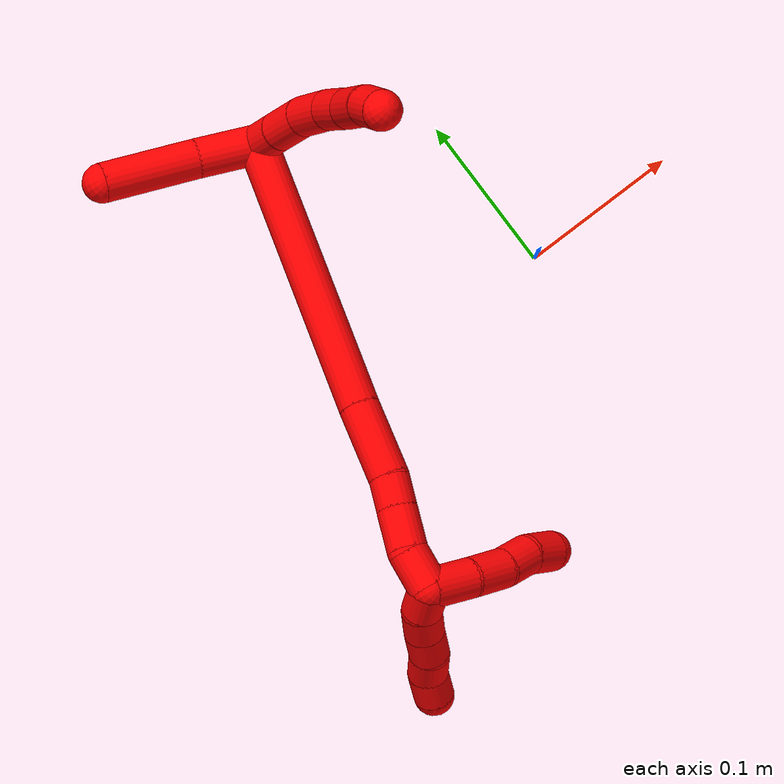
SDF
<sdf version="1.7">
 <world name="default">
  <model name="photoneo_s_sensor">
   <static>1</static>
   <pose>0 0 2 1.57079 1.57079 3.14159</pose>
   <link name="link">
    <inertial><mass>0.1</mass></inertial>
    <sensor name="sensor" type="depth">
     <update_rate>30</update_rate>
     <camera>
      <horizontal_fov>1.22</horizontal_fov>
      <image><width>1920</width><height>1200</height><format>B8G8R8</format></image>
      <clip><near>0.1</near><far>4</far></clip>
      <depth_camera><output>points</output></depth_camera>
     </camera>
     <plugin name="camera_plugin" filename="libgazebo_ros_depth_camera.so">
      <baseline>0.2</baseline>
      <alwaysOn>1</alwaysOn>
      <updateRate>0.0</updateRate>
      <cameraName>camera_ir</cameraName>
      <imageTopicName>/camera/color/image_raw</imageTopicName>
      <cameraInfoTopicName>/camera/color/camera_info</cameraInfoTopicName>
      <depthImageTopicName>/camera/depth/image_raw</depthImageTopicName>
      <depthImageCameraInfoTopicName>/camera/depth/camera_info</depthImageCameraInfoTopicName>
      <pointCloudTopicName>/camera/depth/points</pointCloudTopicName>
      <frameName>fr_optical</frameName>
      <pointCloudCutoff>0.1</pointCloudCutoff>
      <pointCloudCutoffMax>2.0</pointCloudCutoffMax>
      <distortionK1>0</distortionK1>
      <distortionK2>0</distortionK2>
      <distortionK3>0</distortionK3>
      <distortionT1>0</distortionT1>
      <distortionT2>0</distortionT2>
      <CxPrime>0</CxPrime>
      <Cx>0</Cx>
      <Cy>0</Cy>
      <focalLength>0</focalLength>
      <hackBaseline>0</hackBaseline>
     </plugin>
    </sensor>
   </link>
  </model>
  <model name="bin">
   <static>1</static>
   <link name="bottom">
    <collision name="collision-bottom">
     <pose>0 0 -0.01 0 -0 0</pose>
     <geometry><box><size>0.8 0.6 0.02</size></box></geometry>
     <surface>
      <friction><ode><mu>100</mu><mu2>100</mu2></ode></friction>
      <contact><collide_bitmask>65535</collide_bitmask></contact>
     </surface>
    </collision>
   </link>
   <link name="west_wall">
    <collision name="collision-west_wall">
     <pose>-0.41 0 0.1 0 -0 0</pose>
     <geometry><box><size>0.02 0.6 0.2</size></box></geometry>
     <surface>
      <friction><ode><mu>100</mu><mu2>100</mu2></ode></friction>
      <contact><collide_bitmask>65535</collide_bitmask></contact>
     </surface>
    </collision>
   </link>
   <link name="east_wall">
    <collision name="collision-east_wall">
     <pose>0.41 0 0.1 0 -0 0</pose>
     <geometry><box><size>0.02 0.6 0.2</size></box></geometry>
     <surface>
      <friction><ode><mu>100</mu><mu2>100</mu2></ode></friction>
      <contact><collide_bitmask>65535</collide_bitmask></contact>
     </surface>
    </collision>
   </link>
   <link name="south_wall">
    <collision name="collision-south_wall">
     <pose>0 -0.31 0.1 0 -0 0</pose>
     <geometry><box><size>0.8 0.02 0.2</size></box></geometry>
     <surface>
      <friction><ode><mu>100</mu><mu2>100</mu2></ode></friction>
      <contact><collide_bitmask>65535</collide_bitmask></contact>
     </surface>
    </collision>
   </link>
   <link name="north_wall">
    <collision name="collision-north_wall">
     <pose>0 0.31 0.1 0 -0 0</pose>
     <geometry><box><size>0.8 0.02 0.2</size></box></geometry>
     <surface>
      <friction><ode><mu>100</mu><mu2>100</mu2></ode></friction>
      <contact><collide_bitmask>65535</collide_bitmask></contact>
     </surface>
    </collision>
   </link>
  </model>
  <model name="2">
   <static>0</static>
   <link name="2">
    <collision name="collision-cylinder-e_1_2_8">
     <pose>-2.2e-05 2.4e-05 0.011664 -0.002063 -0.001926 2e-06</pose>
     <geometry><cylinder><radius>0.0125</radius><length>0.023327</length></cylinder></geometry>
     <surface>
      <friction><ode><mu>1.16</mu><mu2>1.16</mu2><slip1>0</slip1><slip2>0</slip2></ode></friction>
      <contact><ode><kp>1e+06</kp><kd>1</kd><max_vel>0</max_vel><min_depth>0.001</min_depth></ode></contact>
     </surface>
    </collision>
    <visual name="visual-cylinder-e_1_2_8">
     <pose>-2.2e-05 2.4e-05 0.011664 -0.002063 -0.001926 2e-06</pose>
     <geometry><cylinder><radius>0.0125</radius><length>0.023327</length></cylinder></geometry>
     <material><ambient>1 0 0 1</ambient></material>
    </visual>
    <collision name="collision-cylinder-e_2_8_9">
     <pose>0.000413 -0.000215 0.036028 0.02074 0.036022 0.000374</pose>
     <geometry><cylinder><radius>0.0125</radius><length>0.025424</length></cylinder></geometry>
     <surface>
      <friction><ode><mu>1.16</mu><mu2>1.16</mu2><slip1>0</slip1><slip2>0</slip2></ode></friction>
      <contact><ode><kp>1e+06</kp><kd>1</kd><max_vel>0</max_vel><min_depth>0.001</min_depth></ode></contact>
     </surface>
    </collision>
    <visual name="visual-cylinder-e_2_8_9">
     <pose>0.000413 -0.000215 0.036028 0.02074 0.036022 0.000374</pose>
     <geometry><cylinder><radius>0.0125</radius><length>0.025424</length></cylinder></geometry>
     <material><ambient>1 0 0 1</ambient></material>
    </visual>
    <collision name="collision-cylinder-e_3_9_10">
     <pose>-0.001236 -0.002175 0.062017 0.126937 -0.155984 -0.009933</pose>
     <geometry><cylinder><radius>0.0125</radius><length>0.02712</length></cylinder></geometry>
     <surface>
      <friction><ode><mu>1.16</mu><mu2>1.16</mu2><slip1>0</slip1><slip2>0</slip2></ode></friction>
      <contact><ode><kp>1e+06</kp><kd>1</kd><max_vel>0</max_vel><min_depth>0.001</min_depth></ode></contact>
     </surface>
    </collision>
    <visual name="visual-cylinder-e_3_9_10">
     <pose>-0.001236 -0.002175 0.062017 0.126937 -0.155984 -0.009933</pose>
     <geometry><cylinder><radius>0.0125</radius><length>0.02712</length></cylinder></geometry>
     <material><ambient>1 0 0 1</ambient></material>
    </visual>
    <collision name="collision-cylinder-e_4_10_11">
     <pose>-0.007371 -0.00528 0.087002 0.119931 -0.329448 -0.019959</pose>
     <geometry><cylinder><radius>0.0125</radius><length>0.024903</length></cylinder></geometry>
     <surface>
      <friction><ode><mu>1.16</mu><mu2>1.16</mu2><slip1>0</slip1><slip2>0</slip2></ode></friction>
      <contact><ode><kp>1e+06</kp><kd>1</kd><max_vel>0</max_vel><min_depth>0.001</min_depth></ode></contact>
     </surface>
    </collision>
    <visual name="visual-cylinder-e_4_10_11">
     <pose>-0.007371 -0.00528 0.087002 0.119931 -0.329448 -0.019959</pose>
     <geometry><cylinder><radius>0.0125</radius><length>0.024903</length></cylinder></geometry>
     <material><ambient>1 0 0 1</ambient></material>
    </visual>
    <collision name="collision-cylinder-e_5_11_12">
     <pose>-0.016838 -0.006722 0.111883 0.002471 -0.3913 -0.00049</pose>
     <geometry><cylinder><radius>0.0125</radius><length>0.028523</length></cylinder></geometry>
     <surface>
      <friction><ode><mu>1.16</mu><mu2>1.16</mu2><slip1>0</slip1><slip2>0</slip2></ode></friction>
      <contact><ode><kp>1e+06</kp><kd>1</kd><max_vel>0</max_vel><min_depth>0.001</min_depth></ode></contact>
     </surface>
    </collision>
    <visual name="visual-cylinder-e_5_11_12">
     <pose>-0.016838 -0.006722 0.111883 0.002471 -0.3913 -0.00049</pose>
     <geometry><cylinder><radius>0.0125</radius><length>0.028523</length></cylinder></geometry>
     <material><ambient>1 0 0 1</ambient></material>
    </visual>
    <collision name="collision-cylinder-e_6_12_6">
     <pose>-0.027106 -0.008653 0.134023 0.20885 -0.485287 -0.051872</pose>
     <geometry><cylinder><radius>0.0125</radius><length>0.020703</length></cylinder></geometry>
     <surface>
      <friction><ode><mu>1.16</mu><mu2>1.16</mu2><slip1>0</slip1><slip2>0</slip2></ode></friction>
      <contact><ode><kp>1e+06</kp><kd>1</kd><max_vel>0</max_vel><min_depth>0.001</min_depth></ode></contact>
     </surface>
    </collision>
    <visual name="visual-cylinder-e_6_12_6">
     <pose>-0.027106 -0.008653 0.134023 0.20885 -0.485287 -0.051872</pose>
     <geometry><cylinder><radius>0.0125</radius><length>0.020703</length></cylinder></geometry>
     <material><ambient>1 0 0 1</ambient></material>
    </visual>
    <collision name="collision-cylinder-e_1_2_13">
     <pose>-0.012585 0.011322 -0.009615 -2.27483 -0.702933 1.34027</pose>
     <geometry><cylinder><radius>0.0125</radius><length>0.038937</length></cylinder></geometry>
     <surface>
      <friction><ode><mu>1.16</mu><mu2>1.16</mu2><slip1>0</slip1><slip2>0</slip2></ode></friction>
      <contact><ode><kp>1e+06</kp><kd>1</kd><max_vel>0</max_vel><min_depth>0.001</min_depth></ode></contact>
     </surface>
    </collision>
    <visual name="visual-cylinder-e_1_2_13">
     <pose>-0.012585 0.011322 -0.009615 -2.27483 -0.702933 1.34027</pose>
     <geometry><cylinder><radius>0.0125</radius><length>0.038937</length></cylinder></geometry>
     <material><ambient>1 0 0 1</ambient></material>
    </visual>
    <collision name="collision-cylinder-e_2_13_5">
     <pose>-0.047052 0.040232 -0.031231 -2.16957 -0.799026 1.34856</pose>
     <geometry><cylinder><radius>0.0125</radius><length>0.061063</length></cylinder></geometry>
     <surface>
      <friction><ode><mu>1.16</mu><mu2>1.16</mu2><slip1>0</slip1><slip2>0</slip2></ode></friction>
      <contact><ode><kp>1e+06</kp><kd>1</kd><max_vel>0</max_vel><min_depth>0.001</min_depth></ode></contact>
     </surface>
    </collision>
    <visual name="visual-cylinder-e_2_13_5">
     <pose>-0.047052 0.040232 -0.031231 -2.16957 -0.799026 1.34856</pose>
     <geometry><cylinder><radius>0.0125</radius><length>0.061063</length></cylinder></geometry>
     <material><ambient>1 0 0 1</ambient></material>
    </visual>
    <collision name="collision-cylinder-e_1_2_14">
     <pose>-0.059072 -0.066471 0.013805 1.36603 -0.716061 -0.591042</pose>
     <geometry><cylinder><radius>0.0125</radius><length>0.179983</length></cylinder></geometry>
     <surface>
      <friction><ode><mu>1.16</mu><mu2>1.16</mu2><slip1>0</slip1><slip2>0</slip2></ode></friction>
      <contact><ode><kp>1e+06</kp><kd>1</kd><max_vel>0</max_vel><min_depth>0.001</min_depth></ode></contact>
     </surface>
    </collision>
    <visual name="visual-cylinder-e_1_2_14">
     <pose>-0.059072 -0.066471 0.013805 1.36603 -0.716061 -0.591042</pose>
     <geometry><cylinder><radius>0.0125</radius><length>0.179983</length></cylinder></geometry>
     <material><ambient>1 0 0 1</ambient></material>
    </visual>
    <collision name="collision-cylinder-e_2_14_15">
     <pose>-0.133249 -0.1508 0.031638 1.34891 -0.689853 -0.559461</pose>
     <geometry><cylinder><radius>0.0125</radius><length>0.047466</length></cylinder></geometry>
     <surface>
      <friction><ode><mu>1.16</mu><mu2>1.16</mu2><slip1>0</slip1><slip2>0</slip2></ode></friction>
      <contact><ode><kp>1e+06</kp><kd>1</kd><max_vel>0</max_vel><min_depth>0.001</min_depth></ode></contact>
     </surface>
    </collision>
    <visual name="visual-cylinder-e_2_14_15">
     <pose>-0.133249 -0.1508 0.031638 1.34891 -0.689853 -0.559461</pose>
     <geometry><cylinder><radius>0.0125</radius><length>0.047466</length></cylinder></geometry>
     <material><ambient>1 0 0 1</ambient></material>
    </visual>
    <collision name="collision-cylinder-e_3_15_16">
     <pose>-0.155563 -0.175656 0.036221 1.49181 -0.798708 -0.743619</pose>
     <geometry><cylinder><radius>0.0125</radius><length>0.020128</length></cylinder></geometry>
     <surface>
      <friction><ode><mu>1.16</mu><mu2>1.16</mu2><slip1>0</slip1><slip2>0</slip2></ode></friction>
      <contact><ode><kp>1e+06</kp><kd>1</kd><max_vel>0</max_vel><min_depth>0.001</min_depth></ode></contact>
     </surface>
    </collision>
    <visual name="visual-cylinder-e_3_15_16">
     <pose>-0.155563 -0.175656 0.036221 1.49181 -0.798708 -0.743619</pose>
     <geometry><cylinder><radius>0.0125</radius><length>0.020128</length></cylinder></geometry>
     <material><ambient>1 0 0 1</ambient></material>
    </visual>
    <collision name="collision-cylinder-e_4_16_17">
     <pose>-0.172829 -0.191541 0.038414 1.38836 -0.838798 -0.710732</pose>
     <geometry><cylinder><radius>0.0125</radius><length>0.027038</length></cylinder></geometry>
     <surface>
      <friction><ode><mu>1.16</mu><mu2>1.16</mu2><slip1>0</slip1><slip2>0</slip2></ode></friction>
      <contact><ode><kp>1e+06</kp><kd>1</kd><max_vel>0</max_vel><min_depth>0.001</min_depth></ode></contact>
     </surface>
    </collision>
    <visual name="visual-cylinder-e_4_16_17">
     <pose>-0.172829 -0.191541 0.038414 1.38836 -0.838798 -0.710732</pose>
     <geometry><cylinder><radius>0.0125</radius><length>0.027038</length></cylinder></geometry>
     <material><ambient>1 0 0 1</ambient></material>
    </visual>
    <collision name="collision-cylinder-e_5_17_1">
     <pose>-0.189268 -0.21121 0.042072 1.38573 -0.526944 -0.440591</pose>
     <geometry><cylinder><radius>0.0125</radius><length>0.025385</length></cylinder></geometry>
     <surface>
      <friction><ode><mu>1.16</mu><mu2>1.16</mu2><slip1>0</slip1><slip2>0</slip2></ode></friction>
      <contact><ode><kp>1e+06</kp><kd>1</kd><max_vel>0</max_vel><min_depth>0.001</min_depth></ode></contact>
     </surface>
    </collision>
    <visual name="visual-cylinder-e_5_17_1">
     <pose>-0.189268 -0.21121 0.042072 1.38573 -0.526944 -0.440591</pose>
     <geometry><cylinder><radius>0.0125</radius><length>0.025385</length></cylinder></geometry>
     <material><ambient>1 0 0 1</ambient></material>
    </visual>
    <collision name="collision-cylinder-e_1_1_18">
     <pose>-0.184624 -0.231027 0.046684 1.29124 0.864976 0.66935</pose>
     <geometry><cylinder><radius>0.0125</radius><length>0.028978</length></cylinder></geometry>
     <surface>
      <friction><ode><mu>1.16</mu><mu2>1.16</mu2><slip1>0</slip1><slip2>0</slip2></ode></friction>
      <contact><ode><kp>1e+06</kp><kd>1</kd><max_vel>0</max_vel><min_depth>0.001</min_depth></ode></contact>
     </surface>
    </collision>
    <visual name="visual-cylinder-e_1_1_18">
     <pose>-0.184624 -0.231027 0.046684 1.29124 0.864976 0.66935</pose>
     <geometry><cylinder><radius>0.0125</radius><length>0.028978</length></cylinder></geometry>
     <material><ambient>1 0 0 1</ambient></material>
    </visual>
    <collision name="collision-cylinder-e_2_18_19">
     <pose>-0.16337 -0.247845 0.049818 1.50142 0.918959 0.864937</pose>
     <geometry><cylinder><radius>0.0125</radius><length>0.025727</length></cylinder></geometry>
     <surface>
      <friction><ode><mu>1.16</mu><mu2>1.16</mu2><slip1>0</slip1><slip2>0</slip2></ode></friction>
      <contact><ode><kp>1e+06</kp><kd>1</kd><max_vel>0</max_vel><min_depth>0.001</min_depth></ode></contact>
     </surface>
    </collision>
    <visual name="visual-cylinder-e_2_18_19">
     <pose>-0.16337 -0.247845 0.049818 1.50142 0.918959 0.864937</pose>
     <geometry><cylinder><radius>0.0125</radius><length>0.025727</length></cylinder></geometry>
     <material><ambient>1 0 0 1</ambient></material>
    </visual>
    <collision name="collision-cylinder-e_3_19_20">
     <pose>-0.143259 -0.260709 0.049887 1.66361 1.09441 1.1787</pose>
     <geometry><cylinder><radius>0.0125</radius><length>0.022248</length></cylinder></geometry>
     <surface>
      <friction><ode><mu>1.16</mu><mu2>1.16</mu2><slip1>0</slip1><slip2>0</slip2></ode></friction>
      <contact><ode><kp>1e+06</kp><kd>1</kd><max_vel>0</max_vel><min_depth>0.001</min_depth></ode></contact>
     </surface>
    </collision>
    <visual name="visual-cylinder-e_3_19_20">
     <pose>-0.143259 -0.260709 0.049887 1.66361 1.09441 1.1787</pose>
     <geometry><cylinder><radius>0.0125</radius><length>0.022248</length></cylinder></geometry>
     <material><ambient>1 0 0 1</ambient></material>
    </visual>
    <collision name="collision-cylinder-e_4_20_4">
     <pose>-0.124934 -0.273364 0.047371 1.83423 0.821804 1.0343</pose>
     <geometry><cylinder><radius>0.0125</radius><length>0.023047</length></cylinder></geometry>
     <surface>
      <friction><ode><mu>1.16</mu><mu2>1.16</mu2><slip1>0</slip1><slip2>0</slip2></ode></friction>
      <contact><ode><kp>1e+06</kp><kd>1</kd><max_vel>0</max_vel><min_depth>0.001</min_depth></ode></contact>
     </surface>
    </collision>
    <visual name="visual-cylinder-e_4_20_4">
     <pose>-0.124934 -0.273364 0.047371 1.83423 0.821804 1.0343</pose>
     <geometry><cylinder><radius>0.0125</radius><length>0.023047</length></cylinder></geometry>
     <material><ambient>1 0 0 1</ambient></material>
    </visual>
    <collision name="collision-cylinder-e_1_1_21">
     <pose>-0.197537 -0.226878 0.035571 2.62098 -0.189748 -0.686285</pose>
     <geometry><cylinder><radius>0.0125</radius><length>0.02</length></cylinder></geometry>
     <surface>
      <friction><ode><mu>1.16</mu><mu2>1.16</mu2><slip1>0</slip1><slip2>0</slip2></ode></friction>
      <contact><ode><kp>1e+06</kp><kd>1</kd><max_vel>0</max_vel><min_depth>0.001</min_depth></ode></contact>
     </surface>
    </collision>
    <visual name="visual-cylinder-e_1_1_21">
     <pose>-0.197537 -0.226878 0.035571 2.62098 -0.189748 -0.686285</pose>
     <geometry><cylinder><radius>0.0125</radius><length>0.02</length></cylinder></geometry>
     <material><ambient>1 0 0 1</ambient></material>
    </visual>
    <collision name="collision-cylinder-e_2_21_22">
     <pose>-0.199802 -0.238843 0.02 2.35422 -0.037902 -0.091196</pose>
     <geometry><cylinder><radius>0.0125</radius><length>0.02</length></cylinder></geometry>
     <surface>
      <friction><ode><mu>1.16</mu><mu2>1.16</mu2><slip1>0</slip1><slip2>0</slip2></ode></friction>
      <contact><ode><kp>1e+06</kp><kd>1</kd><max_vel>0</max_vel><min_depth>0.001</min_depth></ode></contact>
     </surface>
    </collision>
    <visual name="visual-cylinder-e_2_21_22">
     <pose>-0.199802 -0.238843 0.02 2.35422 -0.037902 -0.091196</pose>
     <geometry><cylinder><radius>0.0125</radius><length>0.02</length></cylinder></geometry>
     <material><ambient>1 0 0 1</ambient></material>
    </visual>
    <collision name="collision-cylinder-e_3_22_23">
     <pose>-0.200694 -0.253608 0.006571 2.26335 -0.051327 -0.109189</pose>
     <geometry><cylinder><radius>0.0125</radius><length>0.02</length></cylinder></geometry>
     <surface>
      <friction><ode><mu>1.16</mu><mu2>1.16</mu2><slip1>0</slip1><slip2>0</slip2></ode></friction>
      <contact><ode><kp>1e+06</kp><kd>1</kd><max_vel>0</max_vel><min_depth>0.001</min_depth></ode></contact>
     </surface>
    </collision>
    <visual name="visual-cylinder-e_3_22_23">
     <pose>-0.200694 -0.253608 0.006571 2.26335 -0.051327 -0.109189</pose>
     <geometry><cylinder><radius>0.0125</radius><length>0.02</length></cylinder></geometry>
     <material><ambient>1 0 0 1</ambient></material>
    </visual>
    <collision name="collision-cylinder-e_4_23_24">
     <pose>-0.201564 -0.267284 -0.007806 2.49899 -0.035634 -0.106973</pose>
     <geometry><cylinder><radius>0.0125</radius><length>0.02</length></cylinder></geometry>
     <surface>
      <friction><ode><mu>1.16</mu><mu2>1.16</mu2><slip1>0</slip1><slip2>0</slip2></ode></friction>
      <contact><ode><kp>1e+06</kp><kd>1</kd><max_vel>0</max_vel><min_depth>0.001</min_depth></ode></contact>
     </surface>
    </collision>
    <visual name="visual-cylinder-e_4_23_24">
     <pose>-0.201564 -0.267284 -0.007806 2.49899 -0.035634 -0.106973</pose>
     <geometry><cylinder><radius>0.0125</radius><length>0.02</length></cylinder></geometry>
     <material><ambient>1 0 0 1</ambient></material>
    </visual>
    <collision name="collision-cylinder-e_5_24_3">
     <pose>-0.202891 -0.28133 -0.021648 2.19814 -0.097269 -0.190247</pose>
     <geometry><cylinder><radius>0.0125</radius><length>0.02</length></cylinder></geometry>
     <surface>
      <friction><ode><mu>1.16</mu><mu2>1.16</mu2><slip1>0</slip1><slip2>0</slip2></ode></friction>
      <contact><ode><kp>1e+06</kp><kd>1</kd><max_vel>0</max_vel><min_depth>0.001</min_depth></ode></contact>
     </surface>
    </collision>
    <visual name="visual-cylinder-e_5_24_3">
     <pose>-0.202891 -0.28133 -0.021648 2.19814 -0.097269 -0.190247</pose>
     <geometry><cylinder><radius>0.0125</radius><length>0.02</length></cylinder></geometry>
     <material><ambient>1 0 0 1</ambient></material>
    </visual>
    <collision name="collision-sphere-3">
     <pose>-0.203862 -0.289388 -0.027491 0 -0 0</pose>
     <geometry><sphere><radius>0.0125</radius></sphere></geometry>
     <surface>
      <friction><ode><mu>1.16</mu><mu2>1.16</mu2><slip1>0</slip1><slip2>0</slip2></ode></friction>
      <contact><ode><kp>1e+06</kp><kd>1</kd><max_vel>0</max_vel><min_depth>0.001</min_depth></ode></contact>
     </surface>
    </collision>
    <visual name="visual-sphere-3">
     <pose>-0.203862 -0.289388 -0.027491 0 -0 0</pose>
     <geometry><sphere><radius>0.0125</radius></sphere></geometry>
     <material><ambient>1 0 0 1</ambient></material>
    </visual>
    <collision name="collision-sphere-24">
     <pose>-0.20192 -0.273273 -0.015806 0 -0 0</pose>
     <geometry><sphere><radius>0.0125</radius></sphere></geometry>
     <surface>
      <friction><ode><mu>1.16</mu><mu2>1.16</mu2><slip1>0</slip1><slip2>0</slip2></ode></friction>
      <contact><ode><kp>1e+06</kp><kd>1</kd><max_vel>0</max_vel><min_depth>0.001</min_depth></ode></contact>
     </surface>
    </collision>
    <visual name="visual-sphere-24">
     <pose>-0.20192 -0.273273 -0.015806 0 -0 0</pose>
     <geometry><sphere><radius>0.0125</radius></sphere></geometry>
     <material><ambient>1 0 0 1</ambient></material>
    </visual>
    <collision name="collision-sphere-23">
     <pose>-0.201207 -0.261295 0.000195 0 -0 0</pose>
     <geometry><sphere><radius>0.0125</radius></sphere></geometry>
     <surface>
      <friction><ode><mu>1.16</mu><mu2>1.16</mu2><slip1>0</slip1><slip2>0</slip2></ode></friction>
      <contact><ode><kp>1e+06</kp><kd>1</kd><max_vel>0</max_vel><min_depth>0.001</min_depth></ode></contact>
     </surface>
    </collision>
    <visual name="visual-sphere-23">
     <pose>-0.201207 -0.261295 0.000195 0 -0 0</pose>
     <geometry><sphere><radius>0.0125</radius></sphere></geometry>
     <material><ambient>1 0 0 1</ambient></material>
    </visual>
    <collision name="collision-sphere-22">
     <pose>-0.200181 -0.245922 0.012948 0 -0 0</pose>
     <geometry><sphere><radius>0.0125</radius></sphere></geometry>
     <surface>
      <friction><ode><mu>1.16</mu><mu2>1.16</mu2><slip1>0</slip1><slip2>0</slip2></ode></friction>
      <contact><ode><kp>1e+06</kp><kd>1</kd><max_vel>0</max_vel><min_depth>0.001</min_depth></ode></contact>
     </surface>
    </collision>
    <visual name="visual-sphere-22">
     <pose>-0.200181 -0.245922 0.012948 0 -0 0</pose>
     <geometry><sphere><radius>0.0125</radius></sphere></geometry>
     <material><ambient>1 0 0 1</ambient></material>
    </visual>
    <collision name="collision-sphere-21">
     <pose>-0.199424 -0.231763 0.027052 0 -0 0</pose>
     <geometry><sphere><radius>0.0125</radius></sphere></geometry>
     <surface>
      <friction><ode><mu>1.16</mu><mu2>1.16</mu2><slip1>0</slip1><slip2>0</slip2></ode></friction>
      <contact><ode><kp>1e+06</kp><kd>1</kd><max_vel>0</max_vel><min_depth>0.001</min_depth></ode></contact>
     </surface>
    </collision>
    <visual name="visual-sphere-21">
     <pose>-0.199424 -0.231763 0.027052 0 -0 0</pose>
     <geometry><sphere><radius>0.0125</radius></sphere></geometry>
     <material><ambient>1 0 0 1</ambient></material>
    </visual>
    <collision name="collision-sphere-4">
     <pose>-0.116495 -0.280939 0.045327 0 -0 0</pose>
     <geometry><sphere><radius>0.0125</radius></sphere></geometry>
     <surface>
      <friction><ode><mu>1.16</mu><mu2>1.16</mu2><slip1>0</slip1><slip2>0</slip2></ode></friction>
      <contact><ode><kp>1e+06</kp><kd>1</kd><max_vel>0</max_vel><min_depth>0.001</min_depth></ode></contact>
     </surface>
    </collision>
    <visual name="visual-sphere-4">
     <pose>-0.116495 -0.280939 0.045327 0 -0 0</pose>
     <geometry><sphere><radius>0.0125</radius></sphere></geometry>
     <material><ambient>1 0 0 1</ambient></material>
    </visual>
    <collision name="collision-sphere-20">
     <pose>-0.133374 -0.265788 0.049414 0 -0 0</pose>
     <geometry><sphere><radius>0.0125</radius></sphere></geometry>
     <surface>
      <friction><ode><mu>1.16</mu><mu2>1.16</mu2><slip1>0</slip1><slip2>0</slip2></ode></friction>
      <contact><ode><kp>1e+06</kp><kd>1</kd><max_vel>0</max_vel><min_depth>0.001</min_depth></ode></contact>
     </surface>
    </collision>
    <visual name="visual-sphere-20">
     <pose>-0.133374 -0.265788 0.049414 0 -0 0</pose>
     <geometry><sphere><radius>0.0125</radius></sphere></geometry>
     <material><ambient>1 0 0 1</ambient></material>
    </visual>
    <collision name="collision-sphere-12">
     <pose>-0.022277 -0.006755 0.125066 0 -0 0</pose>
     <geometry><sphere><radius>0.0125</radius></sphere></geometry>
     <surface>
      <friction><ode><mu>1.16</mu><mu2>1.16</mu2><slip1>0</slip1><slip2>0</slip2></ode></friction>
      <contact><ode><kp>1e+06</kp><kd>1</kd><max_vel>0</max_vel><min_depth>0.001</min_depth></ode></contact>
     </surface>
    </collision>
    <visual name="visual-sphere-12">
     <pose>-0.022277 -0.006755 0.125066 0 -0 0</pose>
     <geometry><sphere><radius>0.0125</radius></sphere></geometry>
     <material><ambient>1 0 0 1</ambient></material>
    </visual>
    <collision name="collision-sphere-11">
     <pose>-0.011399 -0.00669 0.098699 0 -0 0</pose>
     <geometry><sphere><radius>0.0125</radius></sphere></geometry>
     <surface>
      <friction><ode><mu>1.16</mu><mu2>1.16</mu2><slip1>0</slip1><slip2>0</slip2></ode></friction>
      <contact><ode><kp>1e+06</kp><kd>1</kd><max_vel>0</max_vel><min_depth>0.001</min_depth></ode></contact>
     </surface>
    </collision>
    <visual name="visual-sphere-11">
     <pose>-0.011399 -0.00669 0.098699 0 -0 0</pose>
     <geometry><sphere><radius>0.0125</radius></sphere></geometry>
     <material><ambient>1 0 0 1</ambient></material>
    </visual>
    <collision name="collision-sphere-10">
     <pose>-0.003342 -0.00387 0.075304 0 -0 0</pose>
     <geometry><sphere><radius>0.0125</radius></sphere></geometry>
     <surface>
      <friction><ode><mu>1.16</mu><mu2>1.16</mu2><slip1>0</slip1><slip2>0</slip2></ode></friction>
      <contact><ode><kp>1e+06</kp><kd>1</kd><max_vel>0</max_vel><min_depth>0.001</min_depth></ode></contact>
     </surface>
    </collision>
    <visual name="visual-sphere-10">
     <pose>-0.003342 -0.00387 0.075304 0 -0 0</pose>
     <geometry><sphere><radius>0.0125</radius></sphere></geometry>
     <material><ambient>1 0 0 1</ambient></material>
    </visual>
    <collision name="collision-sphere-9">
     <pose>0.000871 -0.000479 0.048729 0 -0 0</pose>
     <geometry><sphere><radius>0.0125</radius></sphere></geometry>
     <surface>
      <friction><ode><mu>1.16</mu><mu2>1.16</mu2><slip1>0</slip1><slip2>0</slip2></ode></friction>
      <contact><ode><kp>1e+06</kp><kd>1</kd><max_vel>0</max_vel><min_depth>0.001</min_depth></ode></contact>
     </surface>
    </collision>
    <visual name="visual-sphere-9">
     <pose>0.000871 -0.000479 0.048729 0 -0 0</pose>
     <geometry><sphere><radius>0.0125</radius></sphere></geometry>
     <material><ambient>1 0 0 1</ambient></material>
    </visual>
    <collision name="collision-sphere-2">
     <geometry><sphere><radius>0.0125</radius></sphere></geometry>
     <surface>
      <friction><ode><mu>1.16</mu><mu2>1.16</mu2><slip1>0</slip1><slip2>0</slip2></ode></friction>
      <contact><ode><kp>1e+06</kp><kd>1</kd><max_vel>0</max_vel><min_depth>0.001</min_depth></ode></contact>
     </surface>
    </collision>
    <visual name="visual-sphere-2">
     <geometry><sphere><radius>0.0125</radius></sphere></geometry>
     <material><ambient>1 0 0 1</ambient></material>
    </visual>
    <collision name="collision-sphere-19">
     <pose>-0.153144 -0.25563 0.050359 0 -0 0</pose>
     <geometry><sphere><radius>0.0125</radius></sphere></geometry>
     <surface>
      <friction><ode><mu>1.16</mu><mu2>1.16</mu2><slip1>0</slip1><slip2>0</slip2></ode></friction>
      <contact><ode><kp>1e+06</kp><kd>1</kd><max_vel>0</max_vel><min_depth>0.001</min_depth></ode></contact>
     </surface>
    </collision>
    <visual name="visual-sphere-19">
     <pose>-0.153144 -0.25563 0.050359 0 -0 0</pose>
     <geometry><sphere><radius>0.0125</radius></sphere></geometry>
     <material><ambient>1 0 0 1</ambient></material>
    </visual>
    <collision name="collision-sphere-8">
     <pose>-4.5e-05 4.8e-05 0.023327 0 -0 0</pose>
     <geometry><sphere><radius>0.0125</radius></sphere></geometry>
     <surface>
      <friction><ode><mu>1.16</mu><mu2>1.16</mu2><slip1>0</slip1><slip2>0</slip2></ode></friction>
      <contact><ode><kp>1e+06</kp><kd>1</kd><max_vel>0</max_vel><min_depth>0.001</min_depth></ode></contact>
     </surface>
    </collision>
    <visual name="visual-sphere-8">
     <pose>-4.5e-05 4.8e-05 0.023327 0 -0 0</pose>
     <geometry><sphere><radius>0.0125</radius></sphere></geometry>
     <material><ambient>1 0 0 1</ambient></material>
    </visual>
    <collision name="collision-sphere-6">
     <pose>-0.031934 -0.010552 0.14298 0 -0 0</pose>
     <geometry><sphere><radius>0.0125</radius></sphere></geometry>
     <surface>
      <friction><ode><mu>1.16</mu><mu2>1.16</mu2><slip1>0</slip1><slip2>0</slip2></ode></friction>
      <contact><ode><kp>1e+06</kp><kd>1</kd><max_vel>0</max_vel><min_depth>0.001</min_depth></ode></contact>
     </surface>
    </collision>
    <visual name="visual-sphere-6">
     <pose>-0.031934 -0.010552 0.14298 0 -0 0</pose>
     <geometry><sphere><radius>0.0125</radius></sphere></geometry>
     <material><ambient>1 0 0 1</ambient></material>
    </visual>
    <collision name="collision-sphere-13">
     <pose>-0.025171 0.022644 -0.019229 0 -0 0</pose>
     <geometry><sphere><radius>0.0125</radius></sphere></geometry>
     <surface>
      <friction><ode><mu>1.16</mu><mu2>1.16</mu2><slip1>0</slip1><slip2>0</slip2></ode></friction>
      <contact><ode><kp>1e+06</kp><kd>1</kd><max_vel>0</max_vel><min_depth>0.001</min_depth></ode></contact>
     </surface>
    </collision>
    <visual name="visual-sphere-13">
     <pose>-0.025171 0.022644 -0.019229 0 -0 0</pose>
     <geometry><sphere><radius>0.0125</radius></sphere></geometry>
     <material><ambient>1 0 0 1</ambient></material>
    </visual>
    <collision name="collision-sphere-5">
     <pose>-0.068934 0.057821 -0.043232 0 -0 0</pose>
     <geometry><sphere><radius>0.0125</radius></sphere></geometry>
     <surface>
      <friction><ode><mu>1.16</mu><mu2>1.16</mu2><slip1>0</slip1><slip2>0</slip2></ode></friction>
      <contact><ode><kp>1e+06</kp><kd>1</kd><max_vel>0</max_vel><min_depth>0.001</min_depth></ode></contact>
     </surface>
    </collision>
    <visual name="visual-sphere-5">
     <pose>-0.068934 0.057821 -0.043232 0 -0 0</pose>
     <geometry><sphere><radius>0.0125</radius></sphere></geometry>
     <material><ambient>1 0 0 1</ambient></material>
    </visual>
    <collision name="collision-sphere-14">
     <pose>-0.118144 -0.132942 0.027609 0 -0 0</pose>
     <geometry><sphere><radius>0.0125</radius></sphere></geometry>
     <surface>
      <friction><ode><mu>1.16</mu><mu2>1.16</mu2><slip1>0</slip1><slip2>0</slip2></ode></friction>
      <contact><ode><kp>1e+06</kp><kd>1</kd><max_vel>0</max_vel><min_depth>0.001</min_depth></ode></contact>
     </surface>
    </collision>
    <visual name="visual-sphere-14">
     <pose>-0.118144 -0.132942 0.027609 0 -0 0</pose>
     <geometry><sphere><radius>0.0125</radius></sphere></geometry>
     <material><ambient>1 0 0 1</ambient></material>
    </visual>
    <collision name="collision-sphere-15">
     <pose>-0.148353 -0.168657 0.035667 0 -0 0</pose>
     <geometry><sphere><radius>0.0125</radius></sphere></geometry>
     <surface>
      <friction><ode><mu>1.16</mu><mu2>1.16</mu2><slip1>0</slip1><slip2>0</slip2></ode></friction>
      <contact><ode><kp>1e+06</kp><kd>1</kd><max_vel>0</max_vel><min_depth>0.001</min_depth></ode></contact>
     </surface>
    </collision>
    <visual name="visual-sphere-15">
     <pose>-0.148353 -0.168657 0.035667 0 -0 0</pose>
     <geometry><sphere><radius>0.0125</radius></sphere></geometry>
     <material><ambient>1 0 0 1</ambient></material>
    </visual>
    <collision name="collision-sphere-16">
     <pose>-0.162773 -0.182655 0.036775 0 -0 0</pose>
     <geometry><sphere><radius>0.0125</radius></sphere></geometry>
     <surface>
      <friction><ode><mu>1.16</mu><mu2>1.16</mu2><slip1>0</slip1><slip2>0</slip2></ode></friction>
      <contact><ode><kp>1e+06</kp><kd>1</kd><max_vel>0</max_vel><min_depth>0.001</min_depth></ode></contact>
     </surface>
    </collision>
    <visual name="visual-sphere-16">
     <pose>-0.162773 -0.182655 0.036775 0 -0 0</pose>
     <geometry><sphere><radius>0.0125</radius></sphere></geometry>
     <material><ambient>1 0 0 1</ambient></material>
    </visual>
    <collision name="collision-sphere-17">
     <pose>-0.182885 -0.200426 0.040053 0 -0 0</pose>
     <geometry><sphere><radius>0.0125</radius></sphere></geometry>
     <surface>
      <friction><ode><mu>1.16</mu><mu2>1.16</mu2><slip1>0</slip1><slip2>0</slip2></ode></friction>
      <contact><ode><kp>1e+06</kp><kd>1</kd><max_vel>0</max_vel><min_depth>0.001</min_depth></ode></contact>
     </surface>
    </collision>
    <visual name="visual-sphere-17">
     <pose>-0.182885 -0.200426 0.040053 0 -0 0</pose>
     <geometry><sphere><radius>0.0125</radius></sphere></geometry>
     <material><ambient>1 0 0 1</ambient></material>
    </visual>
    <collision name="collision-sphere-1">
     <pose>-0.195651 -0.221993 0.044091 0 -0 0</pose>
     <geometry><sphere><radius>0.0125</radius></sphere></geometry>
     <surface>
      <friction><ode><mu>1.16</mu><mu2>1.16</mu2><slip1>0</slip1><slip2>0</slip2></ode></friction>
      <contact><ode><kp>1e+06</kp><kd>1</kd><max_vel>0</max_vel><min_depth>0.001</min_depth></ode></contact>
     </surface>
    </collision>
    <visual name="visual-sphere-1">
     <pose>-0.195651 -0.221993 0.044091 0 -0 0</pose>
     <geometry><sphere><radius>0.0125</radius></sphere></geometry>
     <material><ambient>1 0 0 1</ambient></material>
    </visual>
    <collision name="collision-sphere-18">
     <pose>-0.173597 -0.24006 0.049277 0 -0 0</pose>
     <geometry><sphere><radius>0.0125</radius></sphere></geometry>
     <surface>
      <friction><ode><mu>1.16</mu><mu2>1.16</mu2><slip1>0</slip1><slip2>0</slip2></ode></friction>
      <contact><ode><kp>1e+06</kp><kd>1</kd><max_vel>0</max_vel><min_depth>0.001</min_depth></ode></contact>
     </surface>
    </collision>
    <visual name="visual-sphere-18">
     <pose>-0.173597 -0.24006 0.049277 0 -0 0</pose>
     <geometry><sphere><radius>0.0125</radius></sphere></geometry>
     <material><ambient>1 0 0 1</ambient></material>
    </visual>
    <inertial>
     <pose>-0.093129 -0.108529 0.028044 0 -0 0</pose>
     <mass>0.75</mass>
     <inertia>
      <ixx>0.000138</ixx>
      <ixy>0</ixy>
      <ixz>0</ixz>
      <iyy>7.9e-05</iyy>
      <iyz>0</iyz>
      <izz>0.000728</izz>
     </inertia>
    </inertial>
   </link>
   <pose>-0.093945 0.157977 0.012498 0.382177 0.575415 0.418343</pose>
  </model>
 </world>
</sdf>
